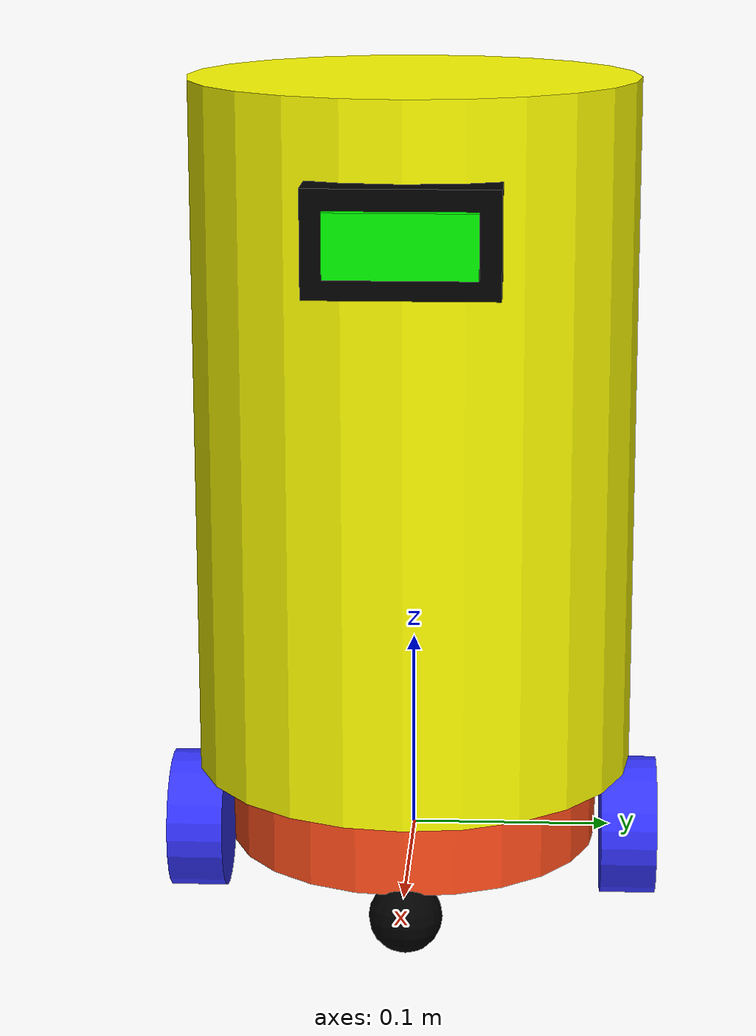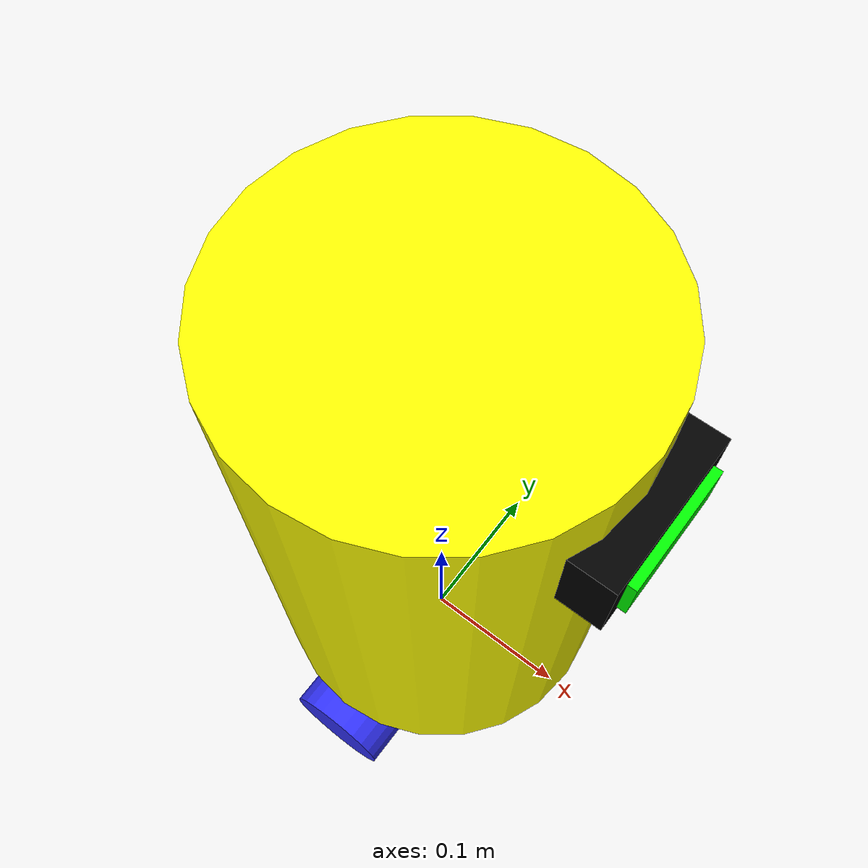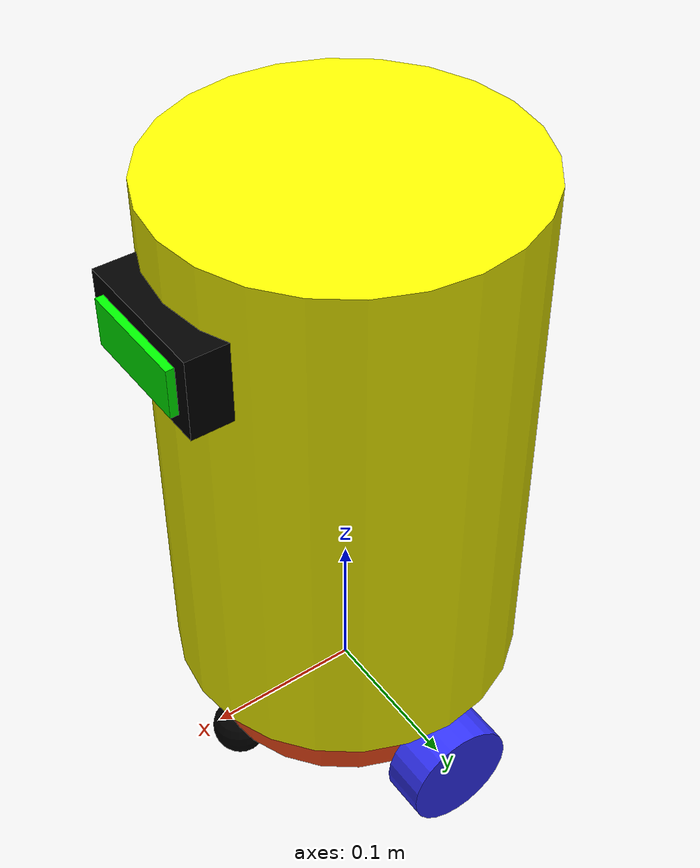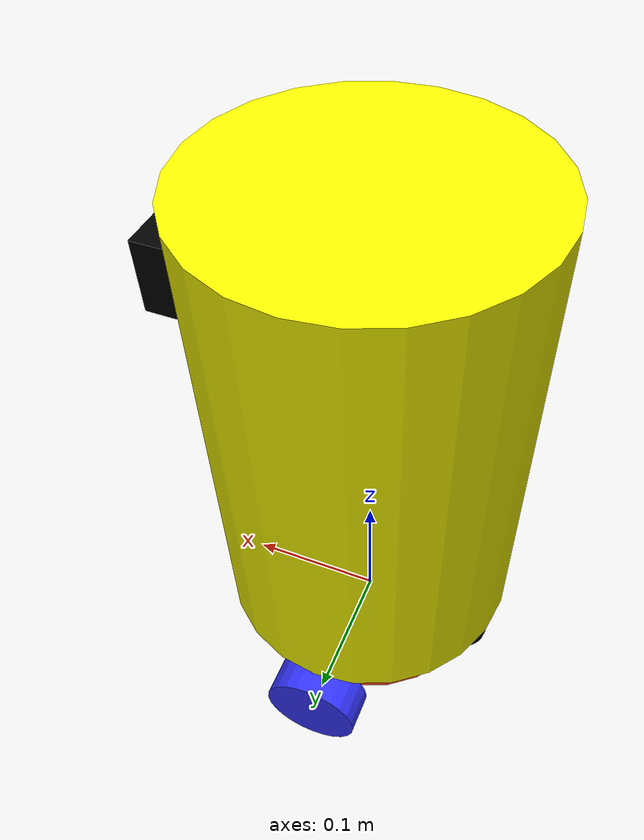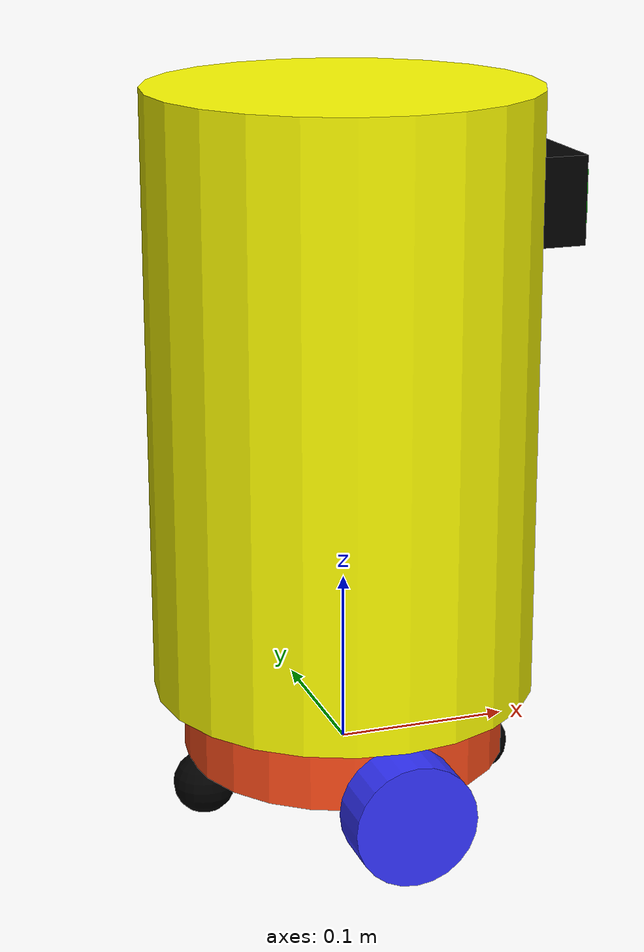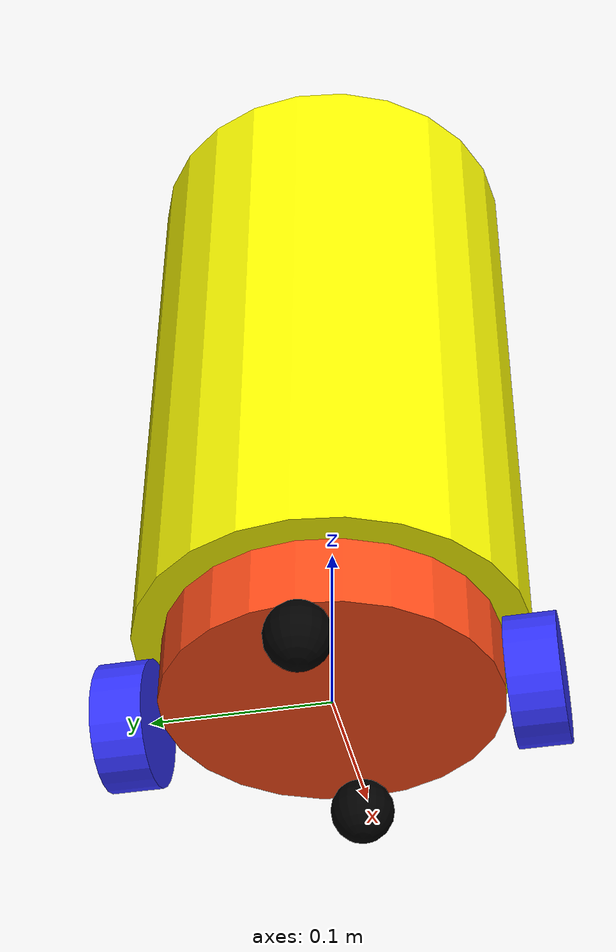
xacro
<?xml version="1.0"?>
<robot xmlns:xacro="http://www.ros.org/wiki/xacro">

    <xacro:include filename="inertial_macros.xacro"/>

            <!-- Farben -->

    <material name="white">
        <color rgba="1 1 1 1"/>
    </material>

    <material name="black">
        <color rgba="0 0 0 1"/>
    </material>

    <material name="blue">
        <color rgba="0.2 0.2 1 1"/>
    </material>

    <material name="yellow">
        <color rgba="1 1 0 1"/>
    </material>

    <material name="orange">
        <color rgba="1 0.3 0.1 1"/>
    </material>

    <material name="green">
        <color rgba="0.0 1.0 0.0 1.0"/>
    </material>

    <!-- BASE LINK -->

    <link name="base_footprint"/>

    <link name="base_link"/>
    <!-- BASE FOOT PRINT -->

    <joint name="base_footprint_joint" type="fixed">
        <parent link="base_footprint"/>
        <child link="base_link"/>
        <origin xyz="0.0 0.0 0.0" rpy="0.0 0.0 0.0"/>
    </joint>

    <!-- CHASSIS LINK -->
    <joint name="cassis_joint" type="fixed">
        <parent link="base_link"/>
        <child link="chassis"/>
        <origin xyz="-0.093 0.0 0.0"/>

    </joint>

    <link name="chassis">
        <visual>
            <origin xyz="0.093 0.0 0.02"/>
            <geometry>
                <cylinder radius="0.093" length="0.045"/>
            </geometry>
            <material name="orange"/>
        </visual>
        <collision>
            <origin xyz="0.093 0.0 0.075"/>
            <geometry>
                <cylinder radius="0.093" length="0.045"/>
            </geometry>
        </collision>
        <xacro:inertial_cylinder mass="0.5" length="0.045" radius="0.093">
            <origin xyz="0.0 0.0 0.0" rpy="0.0 0.0 0.0"/>
        </xacro:inertial_cylinder>
    </link>

    <gazebo reference="chassis">
        <material>Gazebo/Orange</material>
    </gazebo>

        <!-- LEFT WHEEL LINK -->

    <joint name="left_wheel_joint" type="continuous">
        <origin xyz="0.0 0.11 0.0" rpy="${-pi/2} 0.0 0.0"/>
        <parent link="base_link"/>
        <child link="left_wheel"/>
        <axis xyz="0.0 0.0 1.0"/>
        <limit lower="0.0" upper="0.0" effort="0.0" velocity="0.0"/>
    </joint>

    <link name="left_wheel">
        <visual>
            <geometry>
                <cylinder radius="0.035" length="0.028"/>
            </geometry>
            <material name="blue"/>
        </visual>
        <collision>
            <geometry>
                <cylinder radius="0.035" length="0.028"/>
            </geometry>
        </collision>
        <xacro:inertial_cylinder mass="0.1" length="0.028" radius="0.035">
            <origin xyz="0.0 0.0 0.0" rpy="0.0 0.0 0.0"/>
        </xacro:inertial_cylinder>
    </link>

    <gazebo reference="left_wheel">
        <material>Gazebo/Blue</material>
    </gazebo>

    <!-- RIGHT WHEEL LINK -->
    <joint name="right_wheel_joint" type="continuous">
        <origin xyz="0.0 -0.11 0.0" rpy="${pi/2} 0.0 0.0"/>
        <parent link="base_link"/>
        <child link="right_wheel"/>
        <axis xyz="0.0 0.0 -1.0"/>
        <limit lower="0.0" upper="0.0" effort="0.0" velocity="0.0"/>
    </joint>

    <link name="right_wheel">
        <visual>
            <geometry>
                <cylinder radius="0.035" length="0.028"/>
            </geometry>
            <material name="blue"/>
        </visual>
        <collision>
            <geometry>
                <cylinder radius="0.035" length="0.028"/>
            </geometry>
        </collision>
        <xacro:inertial_cylinder mass="0.1" length="0.028" radius="0.035">
            <origin xyz="0.0 0.0 0.0" rpy="0.0 0.0 0.0"/>
        </xacro:inertial_cylinder>
    </link>

    <gazebo reference="right_wheel">
        <material>Gazebo/Blue</material>
    </gazebo>

    <!-- CASTER WHEEL FRONT LINK -->

    <joint name="caster_wheel_front_joint" type="fixed">
        <parent link="base_link"/>
        <child link="caster_wheel_front"/>
        <origin xyz="0.085 0.0 -0.016"/>
    </joint>

    <link name="caster_wheel_front">
        <visual>
            <geometry>
                <sphere radius="0.018"/>
            </geometry>
            <material name="black"/>
        </visual>
        <collision>
            <geometry>
                <sphere radius="0.018"/>
            </geometry>
        </collision>
        <xacro:inertial_sphere mass="0.3" radius="0.018">
            <origin xyz="0.0 0.0 0.0" rpy="0.0 0.0 0.0"/>
        </xacro:inertial_sphere>
    </link>

    <gazebo reference="caster_wheel_front">
        <material>Gazebo/Black</material>
        <mu1 value="0.001"/>
        <mu2 value="0.001"/>
    </gazebo>

    <!-- CASTER WHEEL REAR LINK -->

    <joint name="caster_wheel_rear_joint" type="fixed">
        <parent link="base_link"/>
        <child link="caster_wheel_rear"/>
        <origin xyz="-0.085 0.0 -0.0165"/>
    </joint>

    <link name="caster_wheel_rear">
        <visual>
            <geometry>
                <sphere radius="0.018"/>
            </geometry>
            <material name="black"/>
        </visual>
        <collision>
            <geometry>
                <sphere radius="0.018"/>
            </geometry>
        </collision>
        <xacro:inertial_sphere mass="0.3" radius="0.018">
            <origin xyz="0.0 0.0 0.0" rpy="0.0 0.0 0.0"/>
        </xacro:inertial_sphere>
    </link>

    <gazebo reference="caster_wheel_rear">
        <material>Gazebo/Black</material>
        <mu1 value="0.001"/>
        <mu2 value="0.001"/>
    </gazebo>

    <!-- Body Part -->

    <link name="body">
        <visual>
            <geometry>
                <cylinder radius="0.11" length="0.345"/>
            </geometry>
            <material name="yellow"/>
        </visual>
        <collision>
            <geometry>
                <cylinder radius="0.11" length="0.345"/>
            </geometry>
        </collision>
        <xacro:inertial_cylinder mass="0.1" length="0.345" radius="0.11">
            <origin xyz="0.0 0.0 0.0" rpy="0.0 0.0 0.0"/>
        </xacro:inertial_cylinder>
    </link>

    <gazebo reference="body">
        <material>Gazebo/Yellow</material>
    </gazebo>

    <joint name="body_joint" type="fixed">
        <parent link="base_link"/>
        <child link="body"/>
        <origin xyz="0.0 0.0 0.21"/>
    </joint>

    <!-- LCD DISPLAY and In_display  -->

    <link name="display">
        <visual>
            <geometry>
                <box size="0.09 0.09 0.05"/>
            </geometry>
            <material name="black"/>
        </visual>
        <collision>
            <geometry>
                <box size="0.09 0.09 0.03"/>
            </geometry>
        </collision>
        <xacro:inertial_box mass="0.1" x="0.09" y="0.09" z="0.05">
            <origion xyz="0.0 0.0 0.0" rpy="0.0 0.0 0.0"/>
        </xacro:inertial_box>
    </link>

    <gazebo reference="display">
        <material>Gazebo/Black</material>
    </gazebo>

    <joint name="display_body_joint" type="fixed">
        <origin xyz="0.08 0.0 0.11" rpy="0 0.0 0.0"/>
        <parent link="body"/>
        <child link="display"/>
    </joint>

    <link name="in_display">
        <visual>
            <geometry>
                <box size="0.09 0.07 0.03"/>
            </geometry>
            <material name="green"/>
        </visual>
        <collision>
            <geometry>
                <box size="0.09 0.07 0.03"/>
            </geometry>
        </collision>
        <xacro:inertial_box mass="0.1" x="0.09" y="0.09" z="0.03">
            <origion xyz="0.0 0.0 0.0" rpy="0.0 0.0 0.0"/>
        </xacro:inertial_box>
    </link>

    <gazebo reference="in_display">
        <material>Gazebo/Green</material>
    </gazebo>

    <joint name="in_display_body_joint" type="fixed">
        <origin xyz="0.085 0.0 0.11" rpy="0 0.0 0.0"/>
        <parent link="body"/>
        <child link="in_display"/>
    </joint>

</robot>
